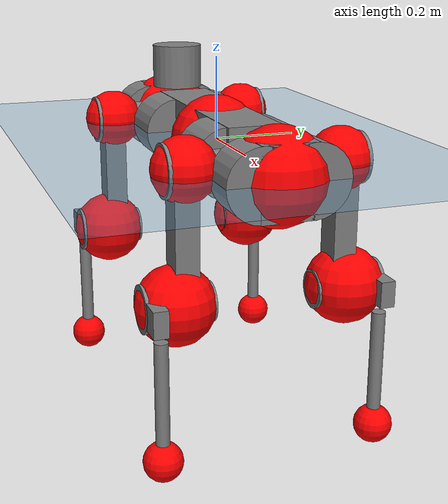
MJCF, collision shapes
<mujoco model="anymal_c">
  <compiler angle="radian" assetdir="assets" balanceinertia="true" inertiafromgeom="false"/>

  <option timestep="0.005" density="1.2" viscosity="2e-05"/>

  <size nkey="1"/>

  <visual>
    <quality shadowsize="8192"/>
    <map shadowclip="0.5"/>
  </visual>

  <default>
    <default class="/">
      <material specular="0" shininess="0.25"/>
      <geom contype="0" conaffinity="0" group="1" solref="-1000 -80"/>
      <site size="0.01 0.005 0.005" group="5"/>
      <general forcelimited="true" forcerange="-80 80" biastype="affine" gainprm="80" biasprm="0 -80 -2"/>
      <default class="anymal_c">
        <joint armature="0.01" damping="0.01" frictionloss="0.1"/>
        <default class="visual">
          <geom type="mesh" group="2"/>
          <default class="visual_zflip"/>
        </default>
        <default class="collision">
          <geom type="cylinder" group="3"/>
          <default class="foot">
            <geom size="0.03 0 0" type="sphere" condim="6" priority="1" friction="0.8 0.02 0.01" solimp="0.015 1 0.03"/>
          </default>
        </default>
      </default>
      <default class="reward_collision_sphere">
        <geom group="5" rgba="1 0 0 1"/>
      </default>
    </default>
  </default>

  <asset>
    <texture type="skybox" colorspace="auto" name="//unnamed_texture_0" builtin="gradient" rgb1="0.95 0.95 0.95" rgb2="0.95 0.95 0.95" width="100" height="600"/>
    <texture type="2d" colorspace="auto" name="texplane" builtin="checker" rgb1="0.345 0.575 0.748" rgb2="0.345 0.575 0.748" markrgb="1 1 1" width="512" height="512"/>
    <texture type="2d" colorspace="linear" name="base" file="base.png"/>
    <texture type="2d" colorspace="linear" name="top_shell" file="top_shell.png"/>
    <texture type="2d" colorspace="linear" name="bottom_shell" file="bottom_shell.png"/>
    <texture type="2d" colorspace="linear" name="remote" file="remote.png"/>
    <texture type="2d" colorspace="linear" name="hatch" file="hatch.png"/>
    <texture type="2d" colorspace="linear" name="handle" file="handle.png"/>
    <texture type="2d" colorspace="linear" name="face" file="face.png"/>
    <texture type="2d" colorspace="linear" name="battery" file="battery.png"/>
    <texture type="2d" colorspace="linear" name="lidar_cage" file="lidar_cage.png"/>
    <texture type="2d" colorspace="linear" name="depth_camera" file="depth_camera.png"/>
    <texture type="2d" colorspace="linear" name="wide_angle_camera" file="wide_angle_camera.png"/>
    <texture type="2d" colorspace="linear" name="lidar" file="lidar.png"/>
    <texture type="2d" colorspace="linear" name="drive" file="drive.png"/>
    <texture type="2d" colorspace="linear" name="hip_l" file="hip_l.png"/>
    <texture type="2d" colorspace="linear" name="shank_l" file="shank_l.png"/>
    <texture type="2d" colorspace="linear" name="foot" file="foot.png"/>
    <texture type="2d" colorspace="linear" name="thigh" file="thigh.png"/>
    <texture type="2d" colorspace="linear" name="shank_r" file="shank_r.png"/>
    <texture type="2d" colorspace="linear" name="hip_r" file="hip_r.png"/>
    <material name="MatPlane" class="/" texture="texplane" texuniform="true" texrepeat="2 2" specular="0.9" shininess="0.5"/>
    <material name="black_plastic" class="/" rgba="0.007 0.007 0.007 1"/>
    <material name="green" class="/" rgba="0.052 0.178 0.033 1"/>
    <material name="red" class="/" rgba="0.178 0.006 0.005 1"/>
    <material name="yellow" class="/" rgba="0.178 0.119 0.006 1"/>
    <material name="lwl" class="/" rgba="0.8 0.8 0.8 1"/>
    <material name="base" class="/" texture="base"/>
    <material name="top_shell" class="/" texture="top_shell"/>
    <material name="bottom_shell" class="/" texture="bottom_shell"/>
    <material name="hip_l" class="/" texture="hip_l"/>
    <material name="thigh" class="/" texture="thigh"/>
    <material name="shank_l" class="/" texture="shank_l"/>
    <material name="foot" class="/" texture="foot"/>
    <material name="hip_r" class="/" texture="hip_r"/>
    <material name="shank" class="/" texture="shank_r"/>
    <material name="hatch" class="/" texture="hatch"/>
    <material name="remote" class="/" texture="remote"/>
    <material name="handle" class="/" texture="handle"/>
    <material name="face" class="/" texture="face"/>
    <material name="depth_camera" class="/" texture="depth_camera"/>
    <material name="wide_angle_camera" class="/" texture="wide_angle_camera"/>
    <material name="battery" class="/" texture="battery"/>
    <material name="lidar_cage" class="/" texture="lidar_cage"/>
    <material name="lidar" class="/" texture="lidar"/>
    <material name="drive" class="/" texture="drive"/>
    <mesh name="base_0" class="/" file="base_0.obj"/>
    <mesh name="base_1" class="/" file="base_1.obj"/>
    <mesh name="base_2" class="/" file="base_2.obj"/>
    <mesh name="base_3" class="/" file="base_3.obj"/>
    <mesh name="base_4" class="/" file="base_4.obj"/>
    <mesh name="base_5" class="/" file="base_5.obj"/>
    <mesh name="top_shell" class="/" file="top_shell.obj"/>
    <mesh name="bottom_shell" class="/" file="bottom_shell.obj"/>
    <mesh name="remote" class="/" file="remote.obj"/>
    <mesh name="handle" class="/" file="handle.obj"/>
    <mesh name="face" class="/" file="face.obj"/>
    <mesh name="wide_angle_camera" class="/" file="wide_angle_camera.obj"/>
    <mesh name="depth_camera" class="/" file="depth_camera.obj"/>
    <mesh name="battery" class="/" file="battery.obj"/>
    <mesh name="lidar_cage" class="/" file="lidar_cage.obj"/>
    <mesh name="lidar" class="/" file="lidar.obj"/>
    <mesh name="drive" class="/" file="drive.obj"/>
    <mesh name="hip_l" class="/" file="hip_l.obj"/>
    <mesh name="thigh" class="/" file="thigh.obj"/>
    <mesh name="shank_l" class="/" file="shank_l.obj"/>
    <mesh name="foot" class="/" file="foot.obj"/>
    <mesh name="hip_r" class="/" file="hip_r.obj"/>
    <mesh name="hatch" class="/" file="hatch.obj"/>
    <mesh name="shank_r" class="/" file="shank_r.obj"/>
  </asset>

  <worldbody>
    <geom name="floor" class="/" size="100 100 0.125" type="plane" group="0" material="MatPlane"/>
    <light name="toplight_shadow" class="/" pos="0 0 5" dir="0.0990148 0.0990148 -0.990148" type="directional" ambient="0.04 0.04 0.04" diffuse="0.55 0.55 0.55" specular="0.12 0.12 0.12"/>
    <light name="toplight_fill" class="/" pos="0 0 5" dir="0.0990148 0.0990148 -0.990148" type="directional" castshadow="false" ambient="0.04 0.04 0.04" diffuse="0.3 0.3 0.3" specular="0.08 0.08 0.08"/>
    <body name="trunk" childclass="anymal_c" pos="-0.00283265 -0.000869843 -0.00241338" quat="0.999999 -7.9579e-05 -0.00104175 -0.000927665">
      <inertial pos="-0.000606774 0.00230062 0.0522982" quat="0.497323 0.50085 0.509721 0.491938" mass="14.9852" diaginertia="0.333718 0.233127 0.298982"/>
      <joint name="//unnamed_joint_0" type="free" armature="0" damping="0" frictionloss="0"/>
      <geom name="//unnamed_geom_1" class="visual" material="green" mesh="base_0"/>
      <geom name="//unnamed_geom_2" class="visual" material="yellow" mesh="base_1"/>
      <geom name="//unnamed_geom_3" class="visual" material="red" mesh="base_2"/>
      <geom name="//unnamed_geom_4" class="visual" material="black_plastic" mesh="base_3"/>
      <geom name="//unnamed_geom_5" class="visual" material="lwl" mesh="base_4"/>
      <geom name="//unnamed_geom_6" class="visual" material="base" mesh="base_5"/>
      <geom name="trunk_1" class="collision" size="0.267084 0.0644685 0.0828881" type="box"/>
      <geom name="trunk_2" class="collision" size="0.0828881 0.0667709" pos="0.190324 0.0576802 0" quat="0.707107 0 0.707107 0"/>
      <geom name="trunk_3" class="collision" size="0.0828881 0.0667709" pos="-0.190324 0.0576802 0" quat="0.707107 0 0.707107 0"/>
      <geom name="trunk_4" class="collision" size="0.0828881 0.0667709" pos="0.190324 -0.0576802 0" quat="0.707107 0 0.707107 0"/>
      <geom name="trunk_5" class="collision" size="0.0828881 0.0667709" pos="-0.190324 -0.0576802 0" quat="0.707107 0 0.707107 0"/>
      <geom name="//unnamed_geom_12" class="visual" material="top_shell" mesh="top_shell"/>
      <geom name="//unnamed_geom_13" class="visual" material="bottom_shell" mesh="bottom_shell"/>
      <geom name="//unnamed_geom_14" class="visual" material="remote" mesh="remote"/>
      <geom name="//unnamed_geom_15" class="visual" material="handle" mesh="handle"/>
      <geom name="//unnamed_geom_16" class="visual" pos="0.36271 0 0" quat="1 0 0 0" material="face" mesh="face"/>
      <geom name="trunk_6" class="collision" size="0.0506538 0.0644685 0.0828881" pos="0.410838 0 0" type="box"/>
      <geom name="//unnamed_geom_18" class="collision" size="0.0828881 0.0506538" pos="0.410838 0.0576802 0" quat="0.707107 0 0.707107 0"/>
      <geom name="//unnamed_geom_19" class="collision" size="0.0828881 0.0506538" pos="0.410838 -0.0576802 0" quat="0.707107 0 0.707107 0"/>
      <geom name="//unnamed_geom_20" class="visual" pos="0.403977 0 -0.0325003" quat="0.965926 0 0.258819 0" material="depth_camera" mesh="depth_camera"/>
      <geom name="//unnamed_geom_21" class="visual" pos="0.448903 0 0.0159263" material="wide_angle_camera" mesh="wide_angle_camera"/>
      <geom name="//unnamed_geom_22" class="visual_zflip" pos="-0.36271 0 0" quat="0 0 0 1" material="face" mesh="face"/>
      <geom name="trunk_7" class="collision" size="0.0506538 0.0644685 0.0828881" pos="-0.410838 0 0" quat="0 0 0 1" type="box"/>
      <geom name="//unnamed_geom_24" class="collision" size="0.0828881 0.0506538" pos="-0.410838 -0.0576802 0" quat="0 -0.707107 0 0.707107"/>
      <geom name="//unnamed_geom_25" class="collision" size="0.0828881 0.0506538" pos="-0.410838 0.0576802 0" quat="0 -0.707107 0 0.707107"/>
      <geom name="//unnamed_geom_26" class="visual" pos="-0.403977 0 -0.0325003" quat="0 -0.258819 0 0.965926" material="depth_camera" mesh="depth_camera"/>
      <geom name="//unnamed_geom_27" class="visual_zflip" pos="-0.448903 0 0.0159263" quat="0 0 0 1" material="wide_angle_camera" mesh="wide_angle_camera"/>
      <geom name="//unnamed_geom_28" class="visual" material="battery" mesh="battery"/>
      <geom name="//unnamed_geom_29" class="visual" pos="0 0.0623411 0.0294706" quat="0.683013 -0.183013 0.183013 0.683013" material="depth_camera" mesh="depth_camera"/>
      <geom name="//unnamed_geom_30" class="visual" pos="0 -0.0623411 0.0294706" quat="0.683013 0.183013 0.183013 -0.683013" material="depth_camera" mesh="depth_camera"/>
      <geom name="//unnamed_geom_31" class="visual" pos="-0.31852 0 0.078195" quat="1 0 0 0" material="lidar_cage" mesh="lidar_cage"/>
      <geom name="trunk_8" class="collision" size="0.0644685 0.0552587" pos="-0.31852 0 0.142028"/>
      <geom name="//unnamed_geom_33" class="visual" pos="-0.31852 -2.00571e-05 0.151283" quat="0.707107 0 0 -0.707107" material="lidar" mesh="lidar"/>
      <geom name="//unnamed_geom_34" class="visual" pos="0.262429 0.0857815 -4.13788e-09" quat="0.258819 0.965926 0 0" material="drive" mesh="drive"/>
      <geom name="//unnamed_geom_35" class="visual" pos="0.262429 -0.0857815 4.13788e-09" quat="0.258819 -0.965926 0 0" material="drive" mesh="drive"/>
      <geom name="//unnamed_geom_36" class="visual" pos="-0.262429 0.0857815 4.13788e-09" quat="0 0 0.965926 -0.258819" material="drive" mesh="drive"/>
      <geom name="//unnamed_geom_37" class="visual" pos="-0.262429 -0.0857815 -4.13788e-09" quat="0 0 -0.965926 -0.258819" material="drive" mesh="drive"/>
      <geom name="//unnamed_geom_38" class="visual" pos="0.101506 0 0.0776631" quat="1 0 0 0" material="hatch" mesh="hatch"/>
      <geom name="//unnamed_geom_39" class="reward_collision_sphere" size="0.110517"/>
      <geom name="//unnamed_geom_40" class="reward_collision_sphere" size="0.110517" pos="0.393775 0 0"/>
      <geom name="//unnamed_geom_41" class="reward_collision_sphere" size="0.110517" pos="-0.393775 0 0"/>
      <site name="imu" pos="0.230756 0.00141966 0.042079" size="0.00920978"/>
      <camera name="track" pos="0 -1.648 0" quat="0.707107 0.707107 0 0" mode="trackcom"/>
      <camera name="ego_camera" pos="0.393775 0 -0.0425551" quat="-0.5 -0.5 0.5 0.5"/>
      <body name="LF_HIP" pos="0.262928 0.0853243 -0.00279488" quat="0.258948 0.965891 -0.000305175 -0.000761519">
        <inertial pos="0.0472241 -0.0133214 -0.00911961" quat="-0.127348 0.705367 -0.148515 0.68131" mass="2.22659" diaginertia="0.00308566 0.0019235 0.00473618"/>
        <joint name="LF_HAA" pos="0 0 0" axis="0.999873 0.00561826 0.0149343" range="-0.677956 0.482957" armature="0.0105806" damping="0.00320953" frictionloss="0.0957042"/>
        <geom name="//unnamed_geom_42" class="visual" pos="0 -0.000243413 3.99804e-05" quat="0.258819 -0.965926 0 0" material="hip_l" mesh="hip_l"/>
        <geom name="//unnamed_geom_43" class="visual" pos="0.0524158 -0.0629259 -0.0381045" quat="0.183013 -0.683013 0.683013 0.183013" material="drive" mesh="drive"/>
        <geom name="//unnamed_geom_44" class="collision" size="0.0460489 0.0644685" pos="0.0524158 -0.0098549 -0.00734608" quat="-0.353553 -0.612372 0.612372 -0.353553"/>
        <body name="LF_THIGH" pos="0.0528393 -0.0599414 -0.0468879" quat="0.183154 -0.682961 0.683085 0.182794">
          <inertial pos="0.0273384 -0.00195023 -0.262415" quat="0.993299 -0.00184276 -0.0792725 0.0840753" mass="2.39584" diaginertia="0.0152761 0.0109007 0.00562876"/>
          <joint name="LF_HFE" pos="0 0 0" axis="0.999998 -0.00104404 0.00192522" stiffness="0.0099197" range="-3.15109 3.16815" armature="0.008128" damping="0.000708798" frictionloss="0.0926046"/>
          <geom name="//unnamed_geom_45" class="visual" pos="0.00101574 1.60057e-06 0" quat="0.707107 0 0 -0.707107" material="thigh" mesh="thigh"/>
          <geom name="//unnamed_geom_46" class="collision" size="0.0598636 0.0368391" pos="0.0350022 0 0" quat="0.5 0.5 -0.5 -0.5"/>
          <geom name="//unnamed_geom_47" class="collision" size="0.0345367 0.0276294 0.130147" pos="0.0262516 0 -0.150341" quat="0.707107 0 0 -0.707107" type="box"/>
          <geom name="//unnamed_geom_48" class="visual" pos="0.087768 0 -0.303205" quat="1 0 0 0" material="drive" mesh="drive"/>
          <geom name="//unnamed_geom_49" class="collision" size="0.0460489 0.0644685" pos="0.0265142 0 -0.303205" quat="0.707107 0 0.707107 0"/>
          <geom name="//unnamed_geom_50" class="reward_collision_sphere" size="0.0736783" pos="0.0218764 0 0"/>
          <body name="LF_SHANK" pos="0.0885652 0.00120723 -0.30057" quat="1 -6.83092e-05 -5.16746e-05 0.000115071">
            <inertial pos="0.00406611 -0.0529907 -0.0830537" quat="0.992944 -0.115834 -0.0011708 -0.0253557" mass="0.472572" diaginertia="0.0054107 0.00351534 0.00152661"/>
            <joint name="LF_KFE" pos="0 0 0" axis="0.999999 -0.000921203 0.000695708" range="-3.08408 3.09272" armature="0.0092207" damping="0.00825459" frictionloss="0.0966314"/>
            <geom name="//unnamed_geom_51" class="visual" pos="0.00033121 0.00176603 0" quat="0.707107 0 0 -0.707107" material="shank_l" mesh="shank_l"/>
            <geom name="LF_kfe_act" class="collision" size="0.0552587 0.0184196" pos="0.0175011 0 0" quat="0.5 0.5 -0.5 -0.5"/>
            <geom name="//unnamed_geom_53" class="collision" size="0.0529553 0.031083 0.0174986" pos="0.0175011 -0.0473793 0" quat="0.5 0.5 -0.5 -0.5" type="box"/>
            <geom name="//unnamed_geom_54" class="visual" pos="0.0114194 -0.0719019 -0.359559" quat="0.382683 0 0 -0.92388" material="foot" mesh="foot"/>
            <geom name="LF_calf" class="collision" size="0.0161171 0.13009" pos="0.0114195 -0.072471 -0.179779" quat="0.707107 0 0 -0.707107"/>
            <geom name="LF_foot" class="foot" size="0.0268946" pos="0.0114195 -0.072471 -0.335622" quat="0.707107 0 0 -0.707107"/>
            <geom name="//unnamed_geom_57" class="reward_collision_sphere" size="0.0920978" pos="-0.0437527 0 0"/>
            <geom name="//unnamed_geom_58" class="reward_collision_sphere" size="0.0460489" pos="0.0114195 -0.072471 -0.335622"/>
            <site name="LF_foot" class="foot" pos="0.0114195 -0.072471 -0.335622" quat="0.707107 0 0 -0.707107" size="0.00920978"/>
          </body>
        </body>
      </body>
      <body name="RF_HIP" pos="0.26548 -0.083513 0.00217556" quat="0.258796 -0.965932 -0.000101052 -4.04788e-05">
        <inertial pos="0.0493322 0.0102668 -0.00876398" quat="0.14142 0.674481 0.122843 0.714133" mass="2.21861" diaginertia="0.00297867 0.00195617 0.0045584"/>
        <joint name="RF_HAA" pos="0 0 0" axis="1 -0.000808339 -0.000202347" range="-0.436786 0.707287" armature="0.00934242" damping="0.0123357" frictionloss="0.0976698"/>
        <geom name="//unnamed_geom_59" class="visual" pos="0 0.000243411 3.99803e-05" quat="0.258819 0.965926 0 0" material="hip_r" mesh="hip_r"/>
        <geom name="//unnamed_geom_60" class="visual" pos="0.0524158 0.0629259 -0.0381045" quat="0.183013 0.683013 0.683013 -0.183013" material="drive" mesh="drive"/>
        <geom name="//unnamed_geom_61" class="collision" size="0.0460489 0.0644685" pos="0.0524158 0.0098549 -0.00734608" quat="-0.353553 0.612372 0.612372 0.353553"/>
        <body name="RF_THIGH" pos="0.0550372 0.0617812 -0.0477549" quat="0.182975 0.683079 0.682949 -0.183041">
          <inertial pos="0.0273086 -0.000164529 -0.262965" quat="0.993278 -0.00312661 -0.0774545 0.0859632" mass="2.48343" diaginertia="0.0153886 0.0116167 0.0058364"/>
          <joint name="RF_HFE" pos="0 0 0" axis="0.999998 -0.000240621 0.00180523" stiffness="0.00467185" range="-3.17989 3.19264" armature="0.00807772" damping="0.00755628" frictionloss="0.0918855"/>
          <geom name="//unnamed_geom_62" class="visual" pos="0.00101574 1.60057e-06 0" quat="0.707107 0 0 -0.707107" material="thigh" mesh="thigh"/>
          <geom name="//unnamed_geom_63" class="collision" size="0.0598636 0.0368391" pos="0.0350022 0 0" quat="0.5 0.5 0.5 0.5"/>
          <geom name="//unnamed_geom_64" class="collision" size="0.0345367 0.0276294 0.130147" pos="0.0262516 0 -0.150341" quat="0.707107 0 0 0.707107" type="box"/>
          <geom name="//unnamed_geom_65" class="visual" pos="0.087768 0 -0.303205" quat="1 0 0 0" material="drive" mesh="drive"/>
          <geom name="//unnamed_geom_66" class="collision" size="0.0460489 0.0644685" pos="0.0265142 0 -0.303205" quat="0.707107 0 0.707107 0"/>
          <geom name="//unnamed_geom_67" class="reward_collision_sphere" size="0.0736783" pos="0.0218764 0 0"/>
          <body name="RF_SHANK" pos="0.0882593 -0.000862155 -0.303136" quat="1 -1.38184e-06 7.63449e-05 -0.000154057">
            <inertial pos="0.00483838 0.0500891 -0.0848381" quat="0.993723 0.110333 0.00692721 0.0171488" mass="0.438869" diaginertia="0.00527609 0.00352222 0.0014674"/>
            <joint name="RF_KFE" pos="0 0 0" axis="1 0.000501556 0.000720419" range="-3.16112 3.08588" armature="0.0105624" damping="0.00723295" frictionloss="0.0927307"/>
            <geom name="//unnamed_geom_68" class="visual" pos="0.000331209 -0.00176603 0" quat="0.707107 0 0 0.707107" material="shank" mesh="shank_r"/>
            <geom name="RF_kfe_act" class="collision" size="0.0552587 0.0184196" pos="0.0175011 0 0" quat="0.5 0.5 0.5 0.5"/>
            <geom name="//unnamed_geom_70" class="collision" size="0.0529553 0.031083 0.0174986" pos="0.0175011 0.0473793 0" quat="0.5 0.5 0.5 0.5" type="box"/>
            <geom name="//unnamed_geom_71" class="visual" pos="0.0114195 0.0719019 -0.359559" quat="0.382683 0 0 0.92388" material="foot" mesh="foot"/>
            <geom name="RF_calf" class="collision" size="0.0161171 0.13009" pos="0.0114195 0.072471 -0.179779" quat="0.707107 0 0 0.707107"/>
            <geom name="RF_foot" class="foot" size="0.0291213" pos="0.0114195 0.072471 -0.335622" quat="0.707107 0 0 0.707107"/>
            <geom name="//unnamed_geom_74" class="reward_collision_sphere" size="0.0920978" pos="-0.0437527 0 0"/>
            <geom name="//unnamed_geom_75" class="reward_collision_sphere" size="0.0460489" pos="0.0114195 0.072471 -0.335622"/>
            <site name="RF_foot" class="foot" pos="0.0114195 0.072471 -0.335622" quat="0.707107 0 0 0.707107" size="0.00920978"/>
          </body>
        </body>
      </body>
      <body name="LH_HIP" pos="-0.261037 0.0843953 -0.00101876" quat="7.3498e-06 -0.000105192 0.965923 -0.258831">
        <inertial pos="0.0501686 0.0134781 -0.0110479" quat="0.138543 0.680547 0.129788 0.707684" mass="2.25826" diaginertia="0.0031365 0.00182559 0.00448368"/>
        <joint name="LH_HAA" pos="0 0 0" axis="1 6.31267e-05 0.000644407" range="-0.465175 0.765819" armature="0.00940658" damping="0" frictionloss="0.102261"/>
        <geom name="//unnamed_geom_76" class="visual" pos="0 0.000243411 3.99803e-05" quat="-0.258819 -0.965926 0 0" material="hip_r" mesh="hip_r"/>
        <geom name="//unnamed_geom_77" class="visual" pos="0.0524158 0.0629259 -0.0381045" quat="0.183013 0.683013 0.683013 -0.183013" material="drive" mesh="drive"/>
        <geom name="//unnamed_geom_78" class="collision" size="0.0460489 0.0644685" pos="0.0524158 0.0098549 -0.00734608" quat="-0.353553 0.612372 0.612372 0.353553"/>
        <body name="LH_THIGH" pos="0.0515329 0.059719 -0.0470089" quat="0.18288 0.683147 0.682895 -0.183085">
          <inertial pos="0.0247057 -0.000868975 -0.262392" quat="0.99137 -0.00532198 -0.0889979 0.0961077" mass="2.46918" diaginertia="0.0155071 0.0115901 0.00567997"/>
          <joint name="LH_HFE" pos="0 0 0" axis="0.999901 -0.0133164 0.00454856" range="-3.18542 3.14424" armature="0.00985273" damping="0.0132032" frictionloss="0.0909427"/>
          <geom name="//unnamed_geom_79" class="visual" pos="0.00101574 1.60057e-06 0" quat="0.707107 0 0 -0.707107" material="thigh" mesh="thigh"/>
          <geom name="//unnamed_geom_80" class="collision" size="0.0598636 0.0368391" pos="0.0350022 0 0" quat="0.5 0.5 -0.5 -0.5"/>
          <geom name="//unnamed_geom_81" class="collision" size="0.0345367 0.0276294 0.130147" pos="0.0262516 0 -0.150341" quat="0.707107 0 0 -0.707107" type="box"/>
          <geom name="//unnamed_geom_82" class="visual" pos="0.087768 0 -0.303205" quat="1 0 0 0" material="drive" mesh="drive"/>
          <geom name="//unnamed_geom_83" class="collision" size="0.0460489 0.0644685" pos="0.0265142 0 -0.303205" quat="0.707107 0 0.707107 0"/>
          <geom name="//unnamed_geom_84" class="reward_collision_sphere" size="0.0736783" pos="0.0218764 0 0"/>
          <body name="LH_SHANK" pos="0.0857068 0.000775288 -0.30563" quat="1 0.000183253 -0.000280405 -0.000492176">
            <inertial pos="0.00743643 0.0475804 -0.0830564" quat="0.991983 0.120844 0.00417937 0.0367323" mass="0.445686" diaginertia="0.00523058 0.00360403 0.00150795"/>
            <joint name="LH_KFE" pos="0 0 0" axis="0.999909 -0.0134948 0.000902967" range="-3.12459 3.1421" armature="0.00885707" damping="0.0043398" frictionloss="0.104492"/>
            <geom name="//unnamed_geom_85" class="visual" pos="0.000331209 -0.00176603 0" quat="-0.707107 0 0 -0.707107" material="shank" mesh="shank_r"/>
            <geom name="LH_kfe_act" class="collision" size="0.0552587 0.0184196" pos="0.0175011 0 0" quat="0.5 0.5 -0.5 -0.5"/>
            <geom name="//unnamed_geom_87" class="collision" size="0.0529553 0.031083 0.0174986" pos="0.0175011 0.0473793 0" quat="0.5 0.5 -0.5 -0.5" type="box"/>
            <geom name="//unnamed_geom_88" class="visual" pos="0.0114195 0.0719019 -0.359559" quat="-0.382683 0 0 -0.92388" material="foot" mesh="foot"/>
            <geom name="LH_calf" class="collision" size="0.0161171 0.13009" pos="0.0114195 0.072471 -0.179779" quat="0.707107 0 0 -0.707107"/>
            <geom name="LH_foot" class="foot" size="0.0320017" pos="0.0114195 0.072471 -0.335622" quat="0.707107 0 0 -0.707107"/>
            <geom name="//unnamed_geom_91" class="reward_collision_sphere" size="0.0920978" pos="-0.0437527 0 0"/>
            <geom name="//unnamed_geom_92" class="reward_collision_sphere" size="0.0460489" pos="0.0114195 0.072471 -0.335622"/>
            <site name="LH_foot" class="foot" pos="0.0114195 0.072471 -0.335622" quat="0.707107 0 0 -0.707107" size="0.00920978"/>
          </body>
        </body>
      </body>
      <body name="RH_HIP" pos="-0.262385 -0.0873718 0.00107866" quat="-0.000356008 0.000299959 -0.965858 -0.259072">
        <inertial pos="0.0496853 -0.0104038 -0.0118956" quat="-0.128209 0.71005 -0.13525 0.679043" mass="2.18754" diaginertia="0.00297452 0.00184373 0.00439546"/>
        <joint name="RH_HAA" pos="0 0 0" axis="0.999995 -0.000876422 0.0030571" range="-0.696631 0.439444" armature="0.0080634" damping="0" frictionloss="0.0986337"/>
        <geom name="//unnamed_geom_93" class="visual" pos="0 -0.000243413 3.99804e-05" quat="-0.258819 0.965926 0 0" material="hip_l" mesh="hip_l"/>
        <geom name="//unnamed_geom_94" class="visual" pos="0.0524158 -0.0629259 -0.0381045" quat="-0.183013 0.683013 -0.683013 -0.183013" material="drive" mesh="drive"/>
        <geom name="//unnamed_geom_95" class="collision" size="0.0460489 0.0644685" pos="0.0524158 -0.0098549 -0.00734608" quat="0.353553 0.612372 -0.612372 0.353553"/>
        <body name="RH_THIGH" pos="0.0520677 -0.0596277 -0.0424134" quat="-0.183341 0.683106 -0.682834 -0.183003">
          <inertial pos="0.0244992 0.0027689 -0.261414" quat="0.993317 -0.00591373 -0.0797416 0.0832367" mass="2.24365" diaginertia="0.0154165 0.0111284 0.00569942"/>
          <joint name="RH_HFE" pos="0 0 0" axis="0.999957 -0.00894732 0.00245209" stiffness="0.0104794" range="-3.17878 3.1864" armature="0.00928549" damping="0.00768852" frictionloss="0.0801858"/>
          <geom name="//unnamed_geom_96" class="visual" pos="0.00101574 1.60057e-06 0" quat="0.707107 0 0 -0.707107" material="thigh" mesh="thigh"/>
          <geom name="//unnamed_geom_97" class="collision" size="0.0598636 0.0368391" pos="0.0350022 0 0" quat="0.5 0.5 0.5 0.5"/>
          <geom name="//unnamed_geom_98" class="collision" size="0.0345367 0.0276294 0.130147" pos="0.0262516 0 -0.150341" quat="0.707107 0 0 0.707107" type="box"/>
          <geom name="//unnamed_geom_99" class="visual" pos="0.087768 0 -0.303205" quat="1 0 0 0" material="drive" mesh="drive"/>
          <geom name="//unnamed_geom_100" class="collision" size="0.0460489 0.0644685" pos="0.0265142 0 -0.303205" quat="0.707107 0 0.707107 0"/>
          <geom name="//unnamed_geom_101" class="reward_collision_sphere" size="0.0736783" pos="0.0218764 0 0"/>
          <body name="RH_SHANK" pos="0.0892172 0.000708245 -0.302979" quat="1 -0.00010592 -0.000210101 -0.000278155">
            <inertial pos="0.00627601 -0.0502687 -0.0861163" quat="0.992622 -0.117931 0.00101223 -0.0281466" mass="0.427902" diaginertia="0.00504029 0.00342905 0.00145528"/>
            <joint name="RH_KFE" pos="0 0 0" axis="0.999971 0.00712857 0.00284232" range="-3.13284 3.18814" armature="0.00828952" damping="0.0042127" frictionloss="0.0909546"/>
            <geom name="//unnamed_geom_102" class="visual" pos="0.00033121 0.00176603 0" quat="0.707107 0 0 -0.707107" material="shank_l" mesh="shank_l"/>
            <geom name="RH_kfe_act" class="collision" size="0.0552587 0.0184196" pos="0.0175011 0 0" quat="0.5 0.5 0.5 0.5"/>
            <geom name="//unnamed_geom_104" class="collision" size="0.0529553 0.031083 0.0174986" pos="0.0175011 -0.0473793 0" quat="0.5 0.5 0.5 0.5" type="box"/>
            <geom name="//unnamed_geom_105" class="visual" pos="0.0114194 -0.0719019 -0.359559" quat="0.382683 0 0 -0.92388" material="foot" mesh="foot"/>
            <geom name="RH_calf" class="collision" size="0.0161171 0.13009" pos="0.0114195 -0.072471 -0.179779" quat="0.707107 0 0 0.707107"/>
            <geom name="RH_foot" class="foot" size="0.0249902" pos="0.0114195 -0.072471 -0.335622" quat="0.707107 0 0 0.707107"/>
            <geom name="//unnamed_geom_108" class="reward_collision_sphere" size="0.0920978" pos="-0.0437527 0 0"/>
            <geom name="//unnamed_geom_109" class="reward_collision_sphere" size="0.0460489" pos="0.0114195 -0.072471 -0.335622"/>
            <site name="RH_foot" class="foot" pos="0.0114195 -0.072471 -0.335622" quat="0.707107 0 0 0.707107" size="0.00920978"/>
          </body>
        </body>
      </body>
    </body>
  </worldbody>

  <contact>
    <pair class="/" geom1="floor" geom2="LF_foot" name="//unnamed_contact_0"/>
    <pair class="/" geom1="floor" geom2="RF_foot" name="//unnamed_contact_1"/>
    <pair class="/" geom1="floor" geom2="LH_foot" name="//unnamed_contact_2"/>
    <pair class="/" geom1="floor" geom2="RH_foot" name="//unnamed_contact_3"/>
  </contact>

  <actuator>
    <general name="LF_HAA" class="/" joint="LF_HAA" forcerange="-74.7806 74.7806" gainprm="68.4079" biasprm="0 -68.4079 -1.91257"/>
    <general name="LF_HFE" class="/" joint="LF_HFE" forcerange="-80.2934 80.2934" gainprm="68.4079" biasprm="0 -68.4079 -1.91257"/>
    <general name="LF_KFE" class="/" joint="LF_KFE" forcerange="-66.9247 66.9247" gainprm="68.4079" biasprm="0 -68.4079 -1.91257"/>
    <general name="RF_HAA" class="/" joint="RF_HAA" forcerange="-71.11 71.11" gainprm="68.4079" biasprm="0 -68.4079 -1.91257"/>
    <general name="RF_HFE" class="/" joint="RF_HFE" forcerange="-83.1855 83.1855" gainprm="68.4079" biasprm="0 -68.4079 -1.91257"/>
    <general name="RF_KFE" class="/" joint="RF_KFE" forcerange="-75.7905 75.7905" gainprm="68.4079" biasprm="0 -68.4079 -1.91257"/>
    <general name="LH_HAA" class="/" joint="LH_HAA" forcerange="-79.2858 79.2858" gainprm="68.4079" biasprm="0 -68.4079 -1.91257"/>
    <general name="LH_HFE" class="/" joint="LH_HFE" forcerange="-81.2564 81.2564" gainprm="68.4079" biasprm="0 -68.4079 -1.91257"/>
    <general name="LH_KFE" class="/" joint="LH_KFE" forcerange="-69.8472 69.8472" gainprm="68.4079" biasprm="0 -68.4079 -1.91257"/>
    <general name="RH_HAA" class="/" joint="RH_HAA" forcerange="-73.5455 73.5455" gainprm="68.4079" biasprm="0 -68.4079 -1.91257"/>
    <general name="RH_HFE" class="/" joint="RH_HFE" forcerange="-70.1666 70.1666" gainprm="68.4079" biasprm="0 -68.4079 -1.91257"/>
    <general name="RH_KFE" class="/" joint="RH_KFE" forcerange="-66.5672 66.5672" gainprm="68.4079" biasprm="0 -68.4079 -1.91257"/>
  </actuator>

  <sensor>
    <gyro site="imu" name="imu_angular_velocity"/>
    <velocimeter site="imu" name="imu_linear_velocity"/>
    <framelinvel objtype="site" objname="LF_foot" name="LF_foot_global_linear_velocity"/>
    <framelinvel objtype="site" objname="RF_foot" name="RF_foot_global_linear_velocity"/>
    <framelinvel objtype="site" objname="LH_foot" name="LH_foot_global_linear_velocity"/>
    <framelinvel objtype="site" objname="RH_foot" name="RH_foot_global_linear_velocity"/>
  </sensor>

  <keyframe>
    <key name="home" qpos="0 0 0.55 1 0 0 0 0 0.4 -0.8 0 -0.4 0.8 0 -0.4 0.8 0 0.4 -0.8"/>
  </keyframe>
</mujoco>
